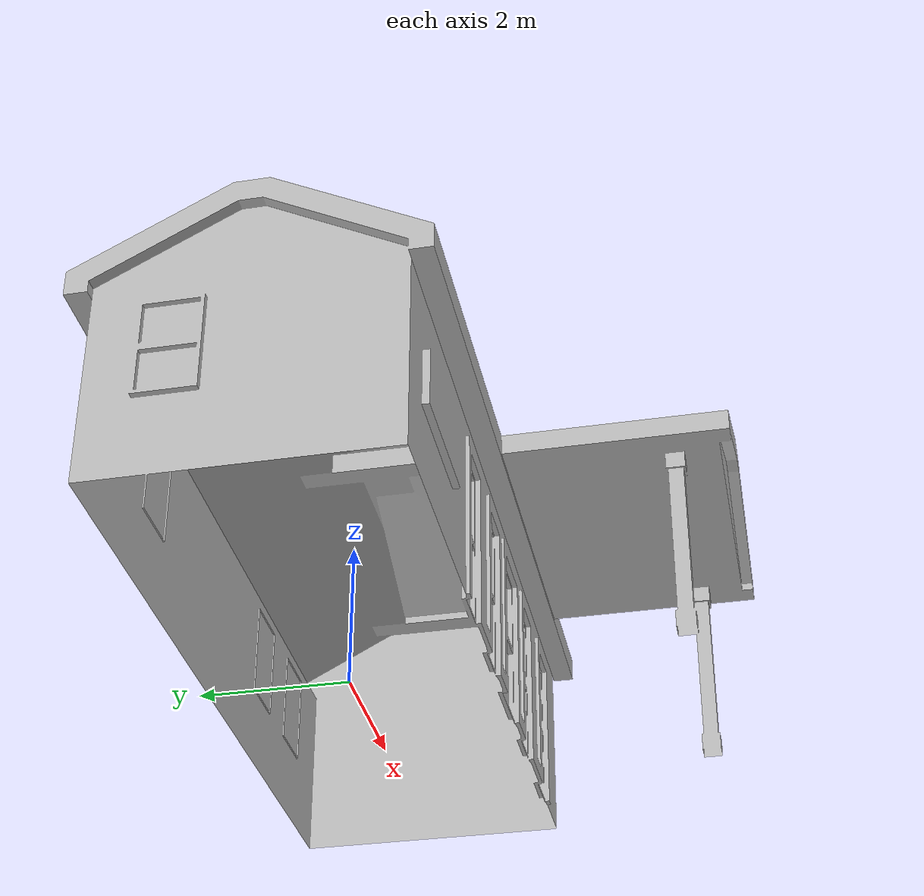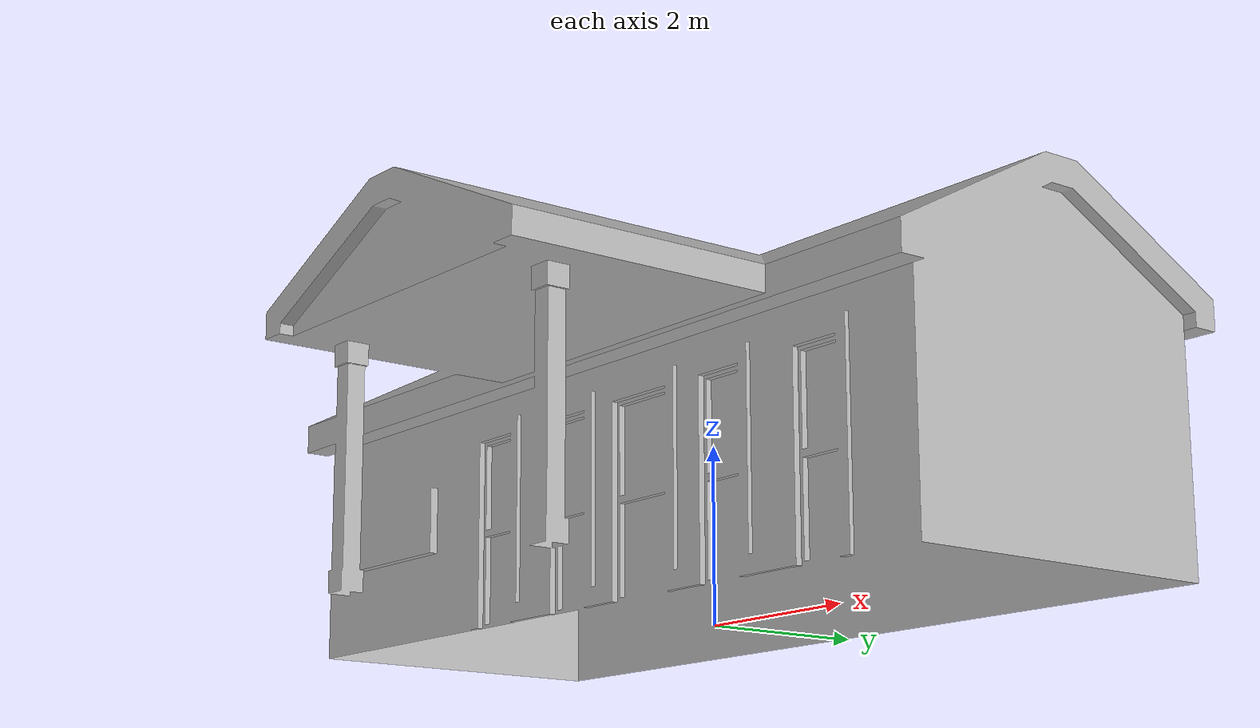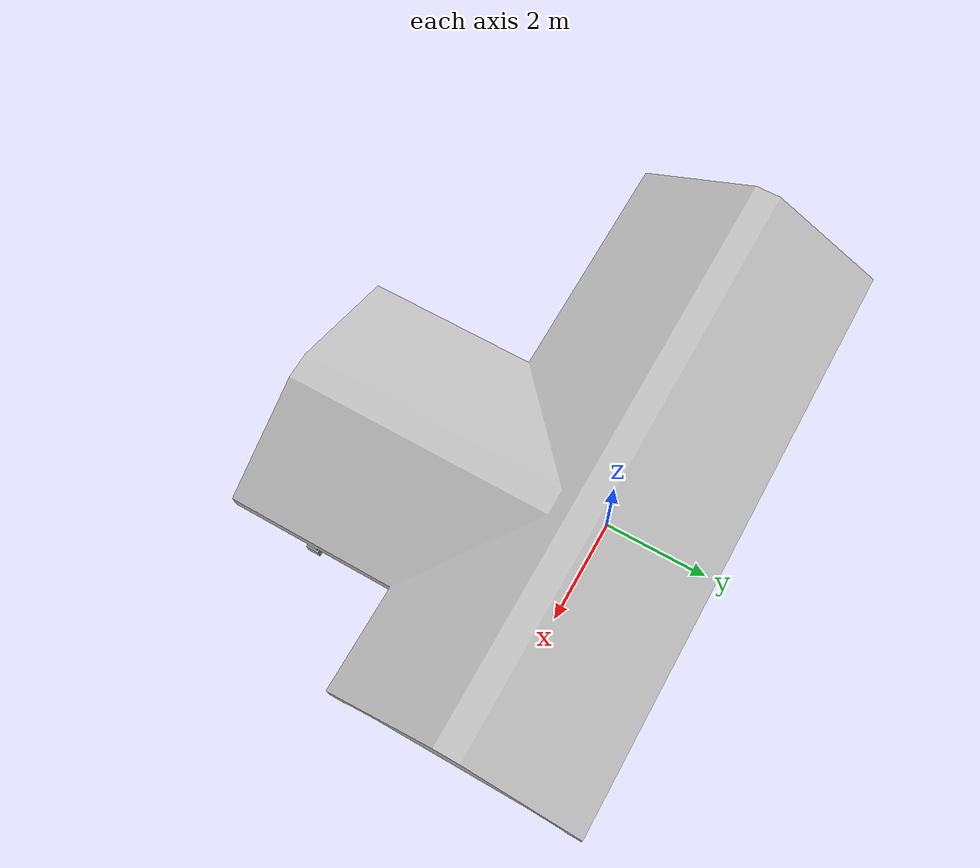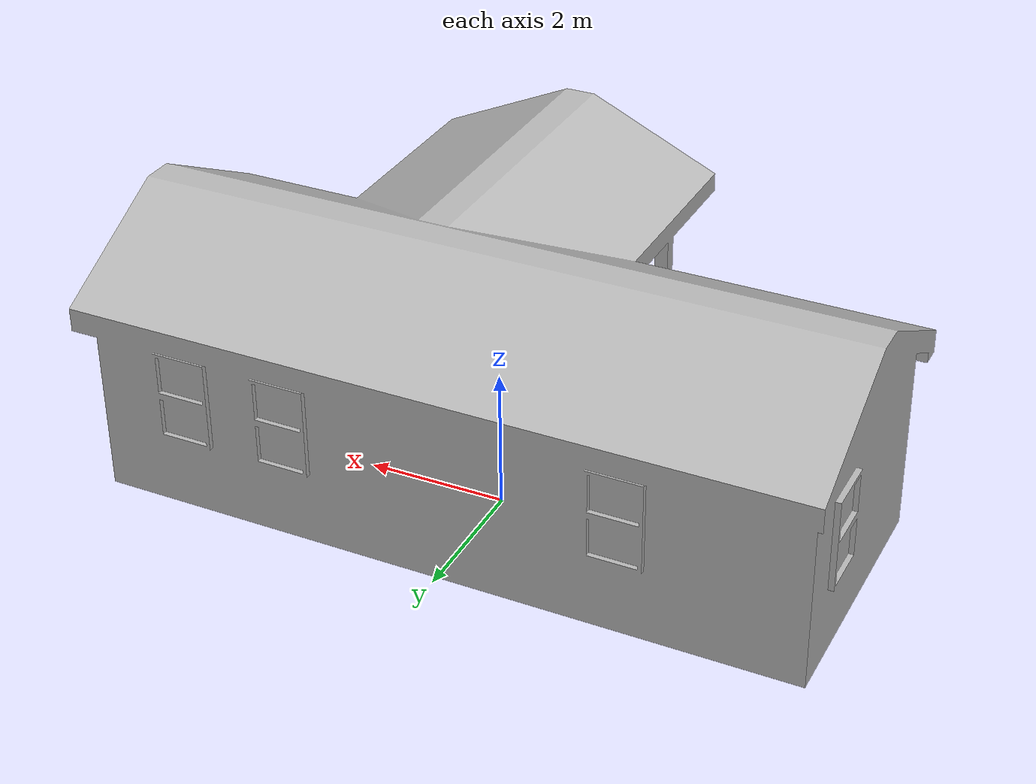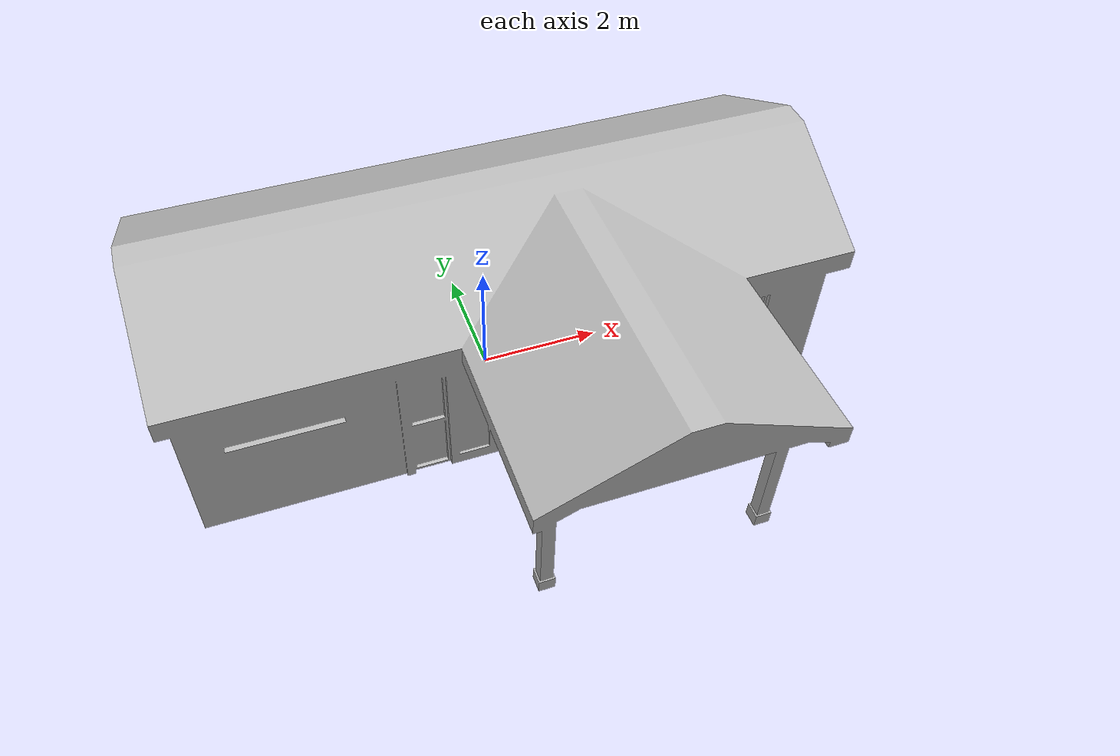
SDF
<?xml version="1.0" ?>
<sdf version="1.6">
  <model name="post_office">
    <static>true</static>
    <link name="link">
    <pose>0 0 0 0 0 3.14</pose>
      <collision name="collision">
        <geometry>
          <mesh>
            <uri>model://post_office/meshes/post_office.dae</uri>
          </mesh>
        </geometry>
      </collision>
      <visual name="visual">
        <geometry>
          <mesh>
            <uri>model://post_office/meshes/post_office.dae</uri>
          </mesh>
        </geometry>
      </visual>
    </link>
  </model>
</sdf>
